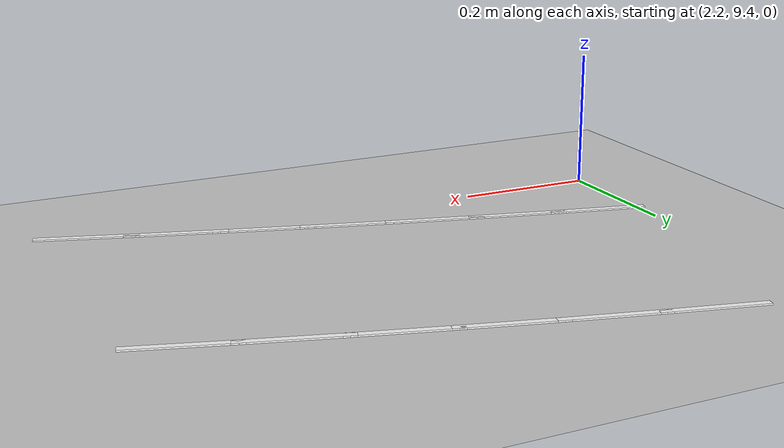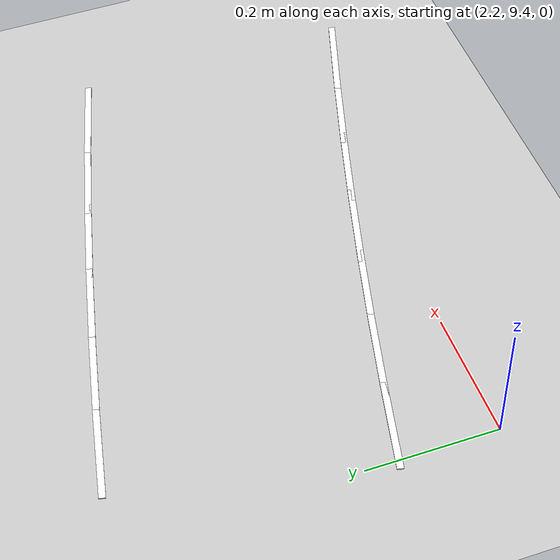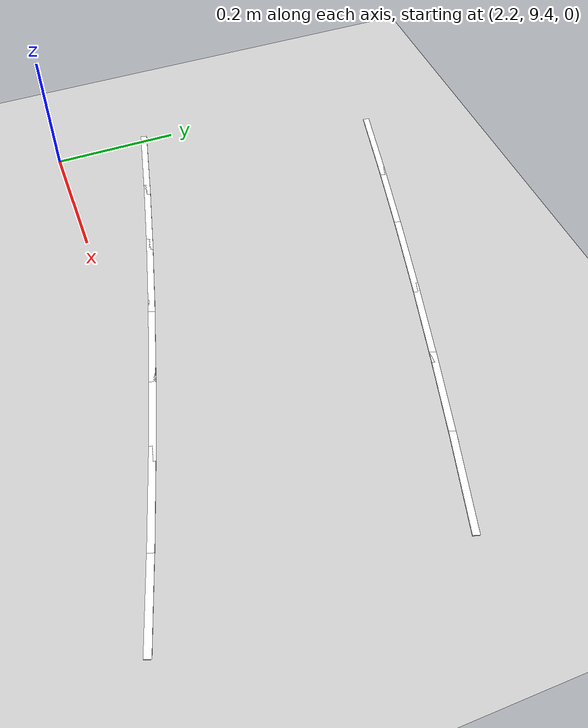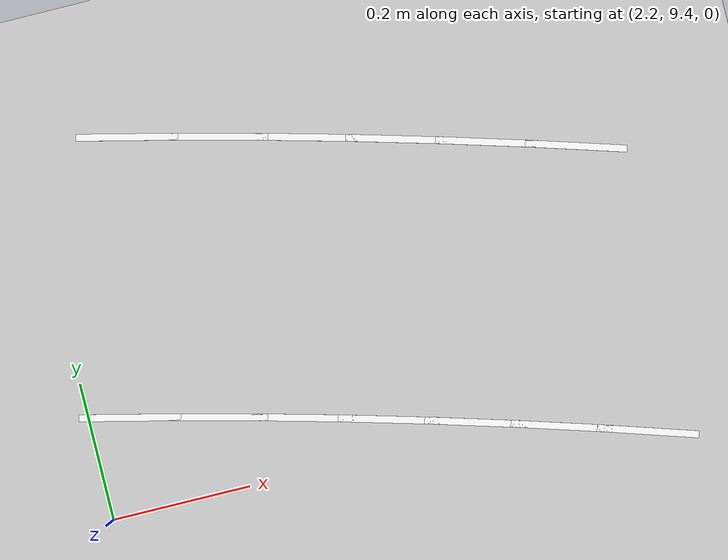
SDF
<sdf version="1.7">
 <world name="default">
  <model name="ground_plane">
   <static>1</static>
   <link name="link">
    <collision name="collision">
     <geometry><plane><normal>0 0 1</normal><size>100 100</size></plane></geometry>
     <surface>
      <contact><collide_bitmask>65535</collide_bitmask></contact>
      <friction><ode><mu>100</mu><mu2>50</mu2></ode></friction>
     </surface>
    </collision>
    <visual name="visual">
     <cast_shadows>0</cast_shadows>
     <geometry><plane><normal>0 0 1</normal><size>100 100</size></plane></geometry>
     <material>
      <script><uri>file://media/materials/scripts/gazebo.material</uri><name>Gazebo/Grey</name></script>
     </material>
    </visual>
   </link>
  </model>
  <model name="lane_line_left_100">
   <static>1</static>
   <link name="link">
    <pose>0 0 -0.004 0 -0 0</pose>
    <visual name="visual">
     <geometry><box><size>0.1457 0.01 0.01</size></box></geometry>
     <material><ambient>1 1 1 1</ambient><diffuse>1 1 1 1</diffuse></material>
    </visual>
    <collision name="collision"><geometry><box><size>0.1457 0.01 0.01</size></box></geometry></collision>
   </link>
   <pose>2.96969 9.33901 0 0 -0 2.83372</pose>
  </model>
  <model name="lane_line_left_101">
   <static>1</static>
   <link name="link">
    <pose>0 0 -0.004 0 -0 0</pose>
    <visual name="visual">
     <geometry><box><size>0.1457 0.01 0.01</size></box></geometry>
     <material><ambient>1 1 1 1</ambient><diffuse>1 1 1 1</diffuse></material>
    </visual>
    <collision name="collision"><geometry><box><size>0.1457 0.01 0.01</size></box></geometry></collision>
   </link>
   <pose>2.8521 9.37559 0 0 -0 2.84628</pose>
  </model>
  <model name="lane_line_right_101">
   <static>1</static>
   <link name="link">
    <pose>0 0 -0.004 0 -0 0</pose>
    <visual name="visual">
     <geometry><box><size>0.1457 0.01 0.01</size></box></geometry>
     <material><ambient>1 1 1 1</ambient><diffuse>1 1 1 1</diffuse></material>
    </visual>
    <collision name="collision"><geometry><box><size>0.1457 0.01 0.01</size></box></geometry></collision>
   </link>
   <pose>2.96851 9.75827 0 0 -0 2.84628</pose>
  </model>
  <model name="lane_line_left_102">
   <static>1</static>
   <link name="link">
    <pose>0 0 -0.004 0 -0 0</pose>
    <visual name="visual">
     <geometry><box><size>0.1457 0.01 0.01</size></box></geometry>
     <material><ambient>1 1 1 1</ambient><diffuse>1 1 1 1</diffuse></material>
    </visual>
    <collision name="collision"><geometry><box><size>0.1457 0.01 0.01</size></box></geometry></collision>
   </link>
   <pose>2.73406 9.41069 0 0 -0 2.85885</pose>
  </model>
  <model name="lane_line_right_102">
   <static>1</static>
   <link name="link">
    <pose>0 0 -0.004 0 -0 0</pose>
    <visual name="visual">
     <geometry><box><size>0.1457 0.01 0.01</size></box></geometry>
     <material><ambient>1 1 1 1</ambient><diffuse>1 1 1 1</diffuse></material>
    </visual>
    <collision name="collision"><geometry><box><size>0.1457 0.01 0.01</size></box></geometry></collision>
   </link>
   <pose>2.84565 9.79481 0 0 -0 2.85885</pose>
  </model>
  <model name="lane_line_left_103">
   <static>1</static>
   <link name="link">
    <pose>0 0 -0.004 0 -0 0</pose>
    <visual name="visual">
     <geometry><box><size>0.1457 0.01 0.01</size></box></geometry>
     <material><ambient>1 1 1 1</ambient><diffuse>1 1 1 1</diffuse></material>
    </visual>
    <collision name="collision"><geometry><box><size>0.1457 0.01 0.01</size></box></geometry></collision>
   </link>
   <pose>2.61559 9.4443 0 0 -0 2.87142</pose>
  </model>
  <model name="lane_line_right_103">
   <static>1</static>
   <link name="link">
    <pose>0 0 -0.004 0 -0 0</pose>
    <visual name="visual">
     <geometry><box><size>0.1457 0.01 0.01</size></box></geometry>
     <material><ambient>1 1 1 1</ambient><diffuse>1 1 1 1</diffuse></material>
    </visual>
    <collision name="collision"><geometry><box><size>0.1457 0.01 0.01</size></box></geometry></collision>
   </link>
   <pose>2.72235 9.82979 0 0 -0 2.87142</pose>
  </model>
  <model name="lane_line_left_104">
   <static>1</static>
   <link name="link">
    <pose>0 0 -0.004 0 -0 0</pose>
    <visual name="visual">
     <geometry><box><size>0.1457 0.01 0.01</size></box></geometry>
     <material><ambient>1 1 1 1</ambient><diffuse>1 1 1 1</diffuse></material>
    </visual>
    <collision name="collision"><geometry><box><size>0.1457 0.01 0.01</size></box></geometry></collision>
   </link>
   <pose>2.4967 9.47642 0 0 -0 2.88398</pose>
  </model>
  <model name="lane_line_right_104">
   <static>1</static>
   <link name="link">
    <pose>0 0 -0.004 0 -0 0</pose>
    <visual name="visual">
     <geometry><box><size>0.1457 0.01 0.01</size></box></geometry>
     <material><ambient>1 1 1 1</ambient><diffuse>1 1 1 1</diffuse></material>
    </visual>
    <collision name="collision"><geometry><box><size>0.1457 0.01 0.01</size></box></geometry></collision>
   </link>
   <pose>2.59861 9.86322 0 0 -0 2.88398</pose>
  </model>
  <model name="lane_line_left_105">
   <static>1</static>
   <link name="link">
    <pose>0 0 -0.004 0 -0 0</pose>
    <visual name="visual">
     <geometry><box><size>0.1457 0.01 0.01</size></box></geometry>
     <material><ambient>1 1 1 1</ambient><diffuse>1 1 1 1</diffuse></material>
    </visual>
    <collision name="collision"><geometry><box><size>0.1457 0.01 0.01</size></box></geometry></collision>
   </link>
   <pose>2.37742 9.50705 0 0 -0 2.89655</pose>
  </model>
  <model name="lane_line_right_105">
   <static>1</static>
   <link name="link">
    <pose>0 0 -0.004 0 -0 0</pose>
    <visual name="visual">
     <geometry><box><size>0.1457 0.01 0.01</size></box></geometry>
     <material><ambient>1 1 1 1</ambient><diffuse>1 1 1 1</diffuse></material>
    </visual>
    <collision name="collision"><geometry><box><size>0.1457 0.01 0.01</size></box></geometry></collision>
   </link>
   <pose>2.47446 9.8951 0 0 -0 2.89655</pose>
  </model>
  <model name="lane_line_left_106">
   <static>1</static>
   <link name="link">
    <pose>0 0 -0.004 0 -0 0</pose>
    <visual name="visual">
     <geometry><box><size>0.1457 0.01 0.01</size></box></geometry>
     <material><ambient>1 1 1 1</ambient><diffuse>1 1 1 1</diffuse></material>
    </visual>
    <collision name="collision"><geometry><box><size>0.1457 0.01 0.01</size></box></geometry></collision>
   </link>
   <pose>2.25777 9.53617 0 0 -0 2.90911</pose>
  </model>
  <model name="lane_line_right_106">
   <static>1</static>
   <link name="link">
    <pose>0 0 -0.004 0 -0 0</pose>
    <visual name="visual">
     <geometry><box><size>0.1457 0.01 0.01</size></box></geometry>
     <material><ambient>1 1 1 1</ambient><diffuse>1 1 1 1</diffuse></material>
    </visual>
    <collision name="collision"><geometry><box><size>0.1457 0.01 0.01</size></box></geometry></collision>
   </link>
   <pose>2.34993 9.92541 0 0 -0 2.90911</pose>
  </model>
 </world>
</sdf>
